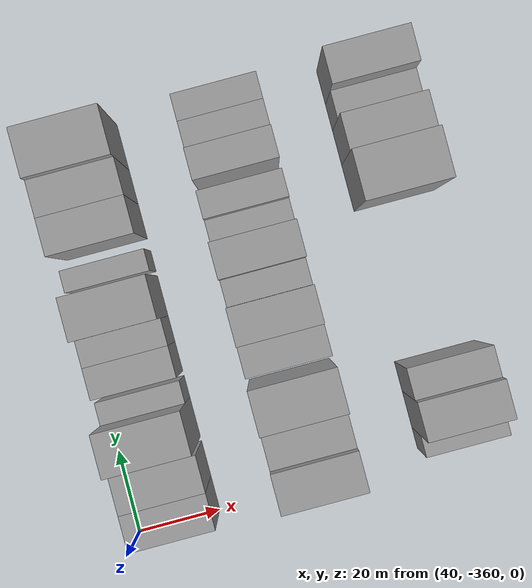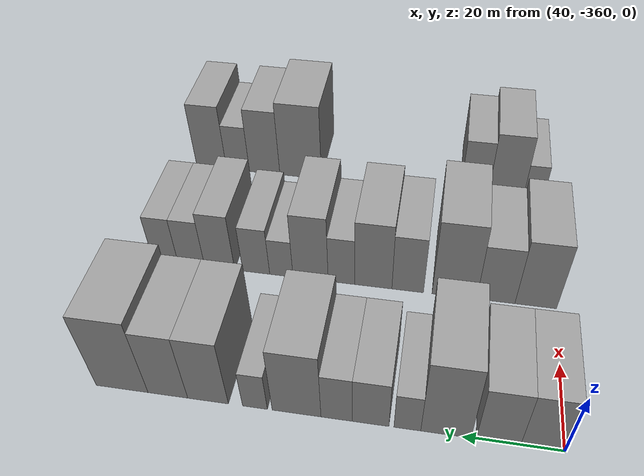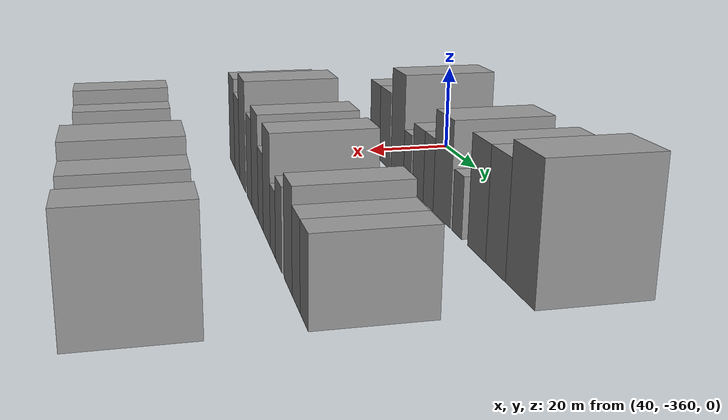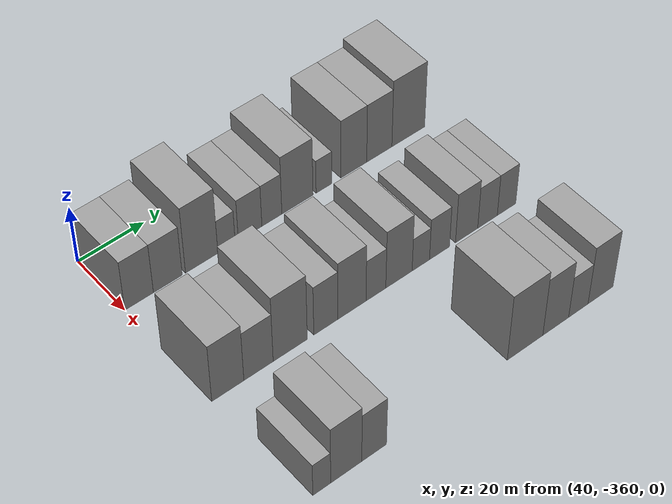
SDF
<sdf version="1.6">
 <world name="default">
  <model name="building_1">
   <static>1</static>
   <pose>50.0000 -355.7327 0 0.000000 0.000000 0.000000</pose>
   <link name="link">
    <pose>0 0 9.00 0 0 0</pose>
    <collision name="collision"><geometry><box><size>20.0000 8.5347 18.0000</size></box></geometry></collision>
    <visual name="visual">
     <cast_shadows>0</cast_shadows>
     <geometry><box><size>20.0000 8.5347 18.0000</size></box></geometry>
     <material>
      <script>
       <uri>model://grey_wall/materials/scripts</uri>
       <uri>model://grey_wall/materials/textures</uri>
       <name>vrc/grey_wall</name>
      </script>
     </material>
    </visual>
   </link>
  </model>
  <model name="building_2">
   <static>1</static>
   <pose>50.0000 -347.1133 0 0.000000 0.000000 0.000000</pose>
   <link name="link">
    <pose>0 0 9.00 0 0 0</pose>
    <collision name="collision"><geometry><box><size>20.0000 8.7041 18.0000</size></box></geometry></collision>
    <visual name="visual">
     <cast_shadows>0</cast_shadows>
     <geometry><box><size>20.0000 8.7041 18.0000</size></box></geometry>
     <material>
      <script>
       <uri>model://grey_wall/materials/scripts</uri>
       <uri>model://grey_wall/materials/textures</uri>
       <name>vrc/grey_wall</name>
      </script>
     </material>
    </visual>
   </link>
  </model>
  <model name="building_3">
   <static>1</static>
   <pose>50.0000 -336.7683 0 0.000000 0.000000 0.000000</pose>
   <link name="link">
    <pose>0 0 12.00 0 0 0</pose>
    <collision name="collision"><geometry><box><size>20.0000 9.9859 24.0000</size></box></geometry></collision>
    <visual name="visual">
     <cast_shadows>0</cast_shadows>
     <geometry><box><size>20.0000 9.9859 24.0000</size></box></geometry>
     <material>
      <script>
       <uri>model://grey_wall/materials/scripts</uri>
       <uri>model://grey_wall/materials/textures</uri>
       <name>vrc/grey_wall</name>
      </script>
     </material>
    </visual>
   </link>
  </model>
  <model name="building_4">
   <static>1</static>
   <pose>50.0000 -329.0870 0 0.000000 0.000000 0.000000</pose>
   <link name="link">
    <pose>0 0 6.00 0 0 0</pose>
    <collision name="collision"><geometry><box><size>20.0000 5.3767 12.0000</size></box></geometry></collision>
    <visual name="visual">
     <cast_shadows>0</cast_shadows>
     <geometry><box><size>20.0000 5.3767 12.0000</size></box></geometry>
     <material>
      <script>
       <uri>model://grey_wall/materials/scripts</uri>
       <uri>model://grey_wall/materials/textures</uri>
       <name>vrc/grey_wall</name>
      </script>
     </material>
    </visual>
   </link>
  </model>
  <model name="building_5">
   <static>1</static>
   <pose>50.0000 -321.6706 0 0.000000 0.000000 0.000000</pose>
   <link name="link">
    <pose>0 0 7.50 0 0 0</pose>
    <collision name="collision"><geometry><box><size>20.0000 7.4561 15.0000</size></box></geometry></collision>
    <visual name="visual">
     <cast_shadows>0</cast_shadows>
     <geometry><box><size>20.0000 7.4561 15.0000</size></box></geometry>
     <material>
      <script>
       <uri>model://grey_wall/materials/scripts</uri>
       <uri>model://grey_wall/materials/textures</uri>
       <name>vrc/grey_wall</name>
      </script>
     </material>
    </visual>
   </link>
  </model>
  <model name="building_6">
   <static>1</static>
   <pose>50.0000 -314.7482 0 0.000000 0.000000 0.000000</pose>
   <link name="link">
    <pose>0 0 7.50 0 0 0</pose>
    <collision name="collision"><geometry><box><size>20.0000 6.3887 15.0000</size></box></geometry></collision>
    <visual name="visual">
     <cast_shadows>0</cast_shadows>
     <geometry><box><size>20.0000 6.3887 15.0000</size></box></geometry>
     <material>
      <script>
       <uri>model://grey_wall/materials/scripts</uri>
       <uri>model://grey_wall/materials/textures</uri>
       <name>vrc/grey_wall</name>
      </script>
     </material>
    </visual>
   </link>
  </model>
  <model name="building_7">
   <static>1</static>
   <pose>50.0000 -306.4963 0 0.000000 0.000000 0.000000</pose>
   <link name="link">
    <pose>0 0 10.50 0 0 0</pose>
    <collision name="collision"><geometry><box><size>20.0000 10.1150 21.0000</size></box></geometry></collision>
    <visual name="visual">
     <cast_shadows>0</cast_shadows>
     <geometry><box><size>20.0000 10.1150 21.0000</size></box></geometry>
     <material>
      <script>
       <uri>model://grey_wall/materials/scripts</uri>
       <uri>model://grey_wall/materials/textures</uri>
       <name>vrc/grey_wall</name>
      </script>
     </material>
    </visual>
   </link>
  </model>
  <model name="building_8">
   <static>1</static>
   <pose>50.0000 -297.8354 0 0.000000 0.000000 0.000000</pose>
   <link name="link">
    <pose>0 0 6.00 0 0 0</pose>
    <collision name="collision"><geometry><box><size>20.0000 5.2068 12.0000</size></box></geometry></collision>
    <visual name="visual">
     <cast_shadows>0</cast_shadows>
     <geometry><box><size>20.0000 5.2068 12.0000</size></box></geometry>
     <material>
      <script>
       <uri>model://grey_wall/materials/scripts</uri>
       <uri>model://grey_wall/materials/textures</uri>
       <name>vrc/grey_wall</name>
      </script>
     </material>
    </visual>
   </link>
  </model>
  <model name="building_9">
   <static>1</static>
   <pose>50.0000 -287.9012 0 0.000000 0.000000 0.000000</pose>
   <link name="link">
    <pose>0 0 10.50 0 0 0</pose>
    <collision name="collision"><geometry><box><size>20.0000 8.6617 21.0000</size></box></geometry></collision>
    <visual name="visual">
     <cast_shadows>0</cast_shadows>
     <geometry><box><size>20.0000 8.6617 21.0000</size></box></geometry>
     <material>
      <script>
       <uri>model://grey_wall/materials/scripts</uri>
       <uri>model://grey_wall/materials/textures</uri>
       <name>vrc/grey_wall</name>
      </script>
     </material>
    </visual>
   </link>
  </model>
  <model name="building_10">
   <static>1</static>
   <pose>50.0000 -279.2929 0 0.000000 0.000000 0.000000</pose>
   <link name="link">
    <pose>0 0 10.50 0 0 0</pose>
    <collision name="collision"><geometry><box><size>20.0000 8.5549 21.0000</size></box></geometry></collision>
    <visual name="visual">
     <cast_shadows>0</cast_shadows>
     <geometry><box><size>20.0000 8.5549 21.0000</size></box></geometry>
     <material>
      <script>
       <uri>model://grey_wall/materials/scripts</uri>
       <uri>model://grey_wall/materials/textures</uri>
       <name>vrc/grey_wall</name>
      </script>
     </material>
    </visual>
   </link>
  </model>
  <model name="building_11">
   <static>1</static>
   <pose>50.0000 -269.3583 0 0.000000 0.000000 0.000000</pose>
   <link name="link">
    <pose>0 0 12.00 0 0 0</pose>
    <collision name="collision"><geometry><box><size>20.0000 11.3145 24.0000</size></box></geometry></collision>
    <visual name="visual">
     <cast_shadows>0</cast_shadows>
     <geometry><box><size>20.0000 11.3145 24.0000</size></box></geometry>
     <material>
      <script>
       <uri>model://grey_wall/materials/scripts</uri>
       <uri>model://grey_wall/materials/textures</uri>
       <name>vrc/grey_wall</name>
      </script>
     </material>
    </visual>
   </link>
  </model>
  <model name="building_78">
   <static>1</static>
   <pose>85.0000 -355.2807 0 0.000000 0.000000 0.000000</pose>
   <link name="link">
    <pose>0 0 10.50 0 0 0</pose>
    <collision name="collision"><geometry><box><size>20.0000 9.4386 21.0000</size></box></geometry></collision>
    <visual name="visual">
     <cast_shadows>0</cast_shadows>
     <geometry><box><size>20.0000 9.4386 21.0000</size></box></geometry>
     <material>
      <script>
       <uri>model://grey_wall/materials/scripts</uri>
       <uri>model://grey_wall/materials/textures</uri>
       <name>vrc/grey_wall</name>
      </script>
     </material>
    </visual>
   </link>
  </model>
  <model name="building_79">
   <static>1</static>
   <pose>85.0000 -346.1865 0 0.000000 0.000000 0.000000</pose>
   <link name="link">
    <pose>0 0 9.00 0 0 0</pose>
    <collision name="collision"><geometry><box><size>20.0000 8.7498 18.0000</size></box></geometry></collision>
    <visual name="visual">
     <cast_shadows>0</cast_shadows>
     <geometry><box><size>20.0000 8.7498 18.0000</size></box></geometry>
     <material>
      <script>
       <uri>model://grey_wall/materials/scripts</uri>
       <uri>model://grey_wall/materials/textures</uri>
       <name>vrc/grey_wall</name>
      </script>
     </material>
    </visual>
   </link>
  </model>
  <model name="building_80">
   <static>1</static>
   <pose>85.0000 -336.6284 0 0.000000 0.000000 0.000000</pose>
   <link name="link">
    <pose>0 0 12.00 0 0 0</pose>
    <collision name="collision"><geometry><box><size>20.0000 10.3663 24.0000</size></box></geometry></collision>
    <visual name="visual">
     <cast_shadows>0</cast_shadows>
     <geometry><box><size>20.0000 10.3663 24.0000</size></box></geometry>
     <material>
      <script>
       <uri>model://grey_wall/materials/scripts</uri>
       <uri>model://grey_wall/materials/textures</uri>
       <name>vrc/grey_wall</name>
      </script>
     </material>
    </visual>
   </link>
  </model>
  <model name="building_81">
   <static>1</static>
   <pose>85.0000 -325.7325 0 0.000000 0.000000 0.000000</pose>
   <link name="link">
    <pose>0 0 9.00 0 0 0</pose>
    <collision name="collision"><geometry><box><size>20.0000 7.4255 18.0000</size></box></geometry></collision>
    <visual name="visual">
     <cast_shadows>0</cast_shadows>
     <geometry><box><size>20.0000 7.4255 18.0000</size></box></geometry>
     <material>
      <script>
       <uri>model://grey_wall/materials/scripts</uri>
       <uri>model://grey_wall/materials/textures</uri>
       <name>vrc/grey_wall</name>
      </script>
     </material>
    </visual>
   </link>
  </model>
  <model name="building_82">
   <static>1</static>
   <pose>85.0000 -317.5813 0 0.000000 0.000000 0.000000</pose>
   <link name="link">
    <pose>0 0 10.50 0 0 0</pose>
    <collision name="collision"><geometry><box><size>20.0000 8.8770 21.0000</size></box></geometry></collision>
    <visual name="visual">
     <cast_shadows>0</cast_shadows>
     <geometry><box><size>20.0000 8.8770 21.0000</size></box></geometry>
     <material>
      <script>
       <uri>model://grey_wall/materials/scripts</uri>
       <uri>model://grey_wall/materials/textures</uri>
       <name>vrc/grey_wall</name>
      </script>
     </material>
    </visual>
   </link>
  </model>
  <model name="building_83">
   <static>1</static>
   <pose>85.0000 -309.9876 0 0.000000 0.000000 0.000000</pose>
   <link name="link">
    <pose>0 0 7.50 0 0 0</pose>
    <collision name="collision"><geometry><box><size>20.0000 6.3103 15.0000</size></box></geometry></collision>
    <visual name="visual">
     <cast_shadows>0</cast_shadows>
     <geometry><box><size>20.0000 6.3103 15.0000</size></box></geometry>
     <material>
      <script>
       <uri>model://grey_wall/materials/scripts</uri>
       <uri>model://grey_wall/materials/textures</uri>
       <name>vrc/grey_wall</name>
      </script>
     </material>
    </visual>
   </link>
  </model>
  <model name="building_84">
   <static>1</static>
   <pose>85.0000 -302.5805 0 0.000000 0.000000 0.000000</pose>
   <link name="link">
    <pose>0 0 10.50 0 0 0</pose>
    <collision name="collision"><geometry><box><size>20.0000 8.5039 21.0000</size></box></geometry></collision>
    <visual name="visual">
     <cast_shadows>0</cast_shadows>
     <geometry><box><size>20.0000 8.5039 21.0000</size></box></geometry>
     <material>
      <script>
       <uri>model://grey_wall/materials/scripts</uri>
       <uri>model://grey_wall/materials/textures</uri>
       <name>vrc/grey_wall</name>
      </script>
     </material>
    </visual>
   </link>
  </model>
  <model name="building_85">
   <static>1</static>
   <pose>85.0000 -295.4867 0 0.000000 0.000000 0.000000</pose>
   <link name="link">
    <pose>0 0 6.00 0 0 0</pose>
    <collision name="collision"><geometry><box><size>20.0000 5.6836 12.0000</size></box></geometry></collision>
    <visual name="visual">
     <cast_shadows>0</cast_shadows>
     <geometry><box><size>20.0000 5.6836 12.0000</size></box></geometry>
     <material>
      <script>
       <uri>model://grey_wall/materials/scripts</uri>
       <uri>model://grey_wall/materials/textures</uri>
       <name>vrc/grey_wall</name>
      </script>
     </material>
    </visual>
   </link>
  </model>
  <model name="building_86">
   <static>1</static>
   <pose>85.0000 -289.3375 0 0.000000 0.000000 0.000000</pose>
   <link name="link">
    <pose>0 0 7.50 0 0 0</pose>
    <collision name="collision"><geometry><box><size>20.0000 6.6150 15.0000</size></box></geometry></collision>
    <visual name="visual">
     <cast_shadows>0</cast_shadows>
     <geometry><box><size>20.0000 6.6150 15.0000</size></box></geometry>
     <material>
      <script>
       <uri>model://grey_wall/materials/scripts</uri>
       <uri>model://grey_wall/materials/textures</uri>
       <name>vrc/grey_wall</name>
      </script>
     </material>
    </visual>
   </link>
  </model>
  <model name="building_87">
   <static>1</static>
   <pose>85.0000 -280.2895 0 0.000000 0.000000 0.000000</pose>
   <link name="link">
    <pose>0 0 9.00 0 0 0</pose>
    <collision name="collision"><geometry><box><size>20.0000 7.4811 18.0000</size></box></geometry></collision>
    <visual name="visual">
     <cast_shadows>0</cast_shadows>
     <geometry><box><size>20.0000 7.4811 18.0000</size></box></geometry>
     <material>
      <script>
       <uri>model://grey_wall/materials/scripts</uri>
       <uri>model://grey_wall/materials/textures</uri>
       <name>vrc/grey_wall</name>
      </script>
     </material>
    </visual>
   </link>
  </model>
  <model name="building_88">
   <static>1</static>
   <pose>85.0000 -273.2208 0 0.000000 0.000000 0.000000</pose>
   <link name="link">
    <pose>0 0 7.50 0 0 0</pose>
    <collision name="collision"><geometry><box><size>20.0000 6.6563 15.0000</size></box></geometry></collision>
    <visual name="visual">
     <cast_shadows>0</cast_shadows>
     <geometry><box><size>20.0000 6.6563 15.0000</size></box></geometry>
     <material>
      <script>
       <uri>model://grey_wall/materials/scripts</uri>
       <uri>model://grey_wall/materials/textures</uri>
       <name>vrc/grey_wall</name>
      </script>
     </material>
    </visual>
   </link>
  </model>
  <model name="building_89">
   <static>1</static>
   <pose>85.0000 -266.7228 0 0.000000 0.000000 0.000000</pose>
   <link name="link">
    <pose>0 0 7.50 0 0 0</pose>
    <collision name="collision"><geometry><box><size>20.0000 6.3396 15.0000</size></box></geometry></collision>
    <visual name="visual">
     <cast_shadows>0</cast_shadows>
     <geometry><box><size>20.0000 6.3396 15.0000</size></box></geometry>
     <material>
      <script>
       <uri>model://grey_wall/materials/scripts</uri>
       <uri>model://grey_wall/materials/textures</uri>
       <name>vrc/grey_wall</name>
      </script>
     </material>
    </visual>
   </link>
  </model>
  <model name="building_161">
   <static>1</static>
   <pose>120.0000 -355.4141 0 0.000000 0.000000 0.000000</pose>
   <link name="link">
    <pose>0 0 6.00 0 0 0</pose>
    <collision name="collision"><geometry><box><size>20.0000 5.1717 12.0000</size></box></geometry></collision>
    <visual name="visual">
     <cast_shadows>0</cast_shadows>
     <geometry><box><size>20.0000 5.1717 12.0000</size></box></geometry>
     <material>
      <script>
       <uri>model://grey_wall/materials/scripts</uri>
       <uri>model://grey_wall/materials/textures</uri>
       <name>vrc/grey_wall</name>
      </script>
     </material>
    </visual>
   </link>
  </model>
  <model name="building_162">
   <static>1</static>
   <pose>120.0000 -348.2744 0 0.000000 0.000000 0.000000</pose>
   <link name="link">
    <pose>0 0 10.50 0 0 0</pose>
    <collision name="collision"><geometry><box><size>20.0000 9.1077 21.0000</size></box></geometry></collision>
    <visual name="visual">
     <cast_shadows>0</cast_shadows>
     <geometry><box><size>20.0000 9.1077 21.0000</size></box></geometry>
     <material>
      <script>
       <uri>model://grey_wall/materials/scripts</uri>
       <uri>model://grey_wall/materials/textures</uri>
       <name>vrc/grey_wall</name>
      </script>
     </material>
    </visual>
   </link>
  </model>
  <model name="building_163">
   <static>1</static>
   <pose>120.0000 -340.0384 0 0.000000 0.000000 0.000000</pose>
   <link name="link">
    <pose>0 0 9.00 0 0 0</pose>
    <collision name="collision"><geometry><box><size>20.0000 7.3644 18.0000</size></box></geometry></collision>
    <visual name="visual">
     <cast_shadows>0</cast_shadows>
     <geometry><box><size>20.0000 7.3644 18.0000</size></box></geometry>
     <material>
      <script>
       <uri>model://grey_wall/materials/scripts</uri>
       <uri>model://grey_wall/materials/textures</uri>
       <name>vrc/grey_wall</name>
      </script>
     </material>
    </visual>
   </link>
  </model>
  <model name="building_164">
   <static>1</static>
   <pose>120.0000 -292.9990 0 0.000000 0.000000 0.000000</pose>
   <link name="link">
    <pose>0 0 12.00 0 0 0</pose>
    <collision name="collision"><geometry><box><size>20.0000 11.5715 24.0000</size></box></geometry></collision>
    <visual name="visual">
     <cast_shadows>0</cast_shadows>
     <geometry><box><size>20.0000 11.5715 24.0000</size></box></geometry>
     <material>
      <script>
       <uri>model://grey_wall/materials/scripts</uri>
       <uri>model://grey_wall/materials/textures</uri>
       <name>vrc/grey_wall</name>
      </script>
     </material>
    </visual>
   </link>
  </model>
  <model name="building_165">
   <static>1</static>
   <pose>120.0000 -282.9363 0 0.000000 0.000000 0.000000</pose>
   <link name="link">
    <pose>0 0 10.50 0 0 0</pose>
    <collision name="collision"><geometry><box><size>20.0000 8.5540 21.0000</size></box></geometry></collision>
    <visual name="visual">
     <cast_shadows>0</cast_shadows>
     <geometry><box><size>20.0000 8.5540 21.0000</size></box></geometry>
     <material>
      <script>
       <uri>model://grey_wall/materials/scripts</uri>
       <uri>model://grey_wall/materials/textures</uri>
       <name>vrc/grey_wall</name>
      </script>
     </material>
    </visual>
   </link>
  </model>
  <model name="building_166">
   <static>1</static>
   <pose>120.0000 -275.4017 0 0.000000 0.000000 0.000000</pose>
   <link name="link">
    <pose>0 0 7.50 0 0 0</pose>
    <collision name="collision"><geometry><box><size>20.0000 6.5151 15.0000</size></box></geometry></collision>
    <visual name="visual">
     <cast_shadows>0</cast_shadows>
     <geometry><box><size>20.0000 6.5151 15.0000</size></box></geometry>
     <material>
      <script>
       <uri>model://grey_wall/materials/scripts</uri>
       <uri>model://grey_wall/materials/textures</uri>
       <name>vrc/grey_wall</name>
      </script>
     </material>
    </visual>
   </link>
  </model>
  <model name="building_167">
   <static>1</static>
   <pose>120.0000 -267.8918 0 0.000000 0.000000 0.000000</pose>
   <link name="link">
    <pose>0 0 10.50 0 0 0</pose>
    <collision name="collision"><geometry><box><size>20.0000 8.5046 21.0000</size></box></geometry></collision>
    <visual name="visual">
     <cast_shadows>0</cast_shadows>
     <geometry><box><size>20.0000 8.5046 21.0000</size></box></geometry>
     <material>
      <script>
       <uri>model://grey_wall/materials/scripts</uri>
       <uri>model://grey_wall/materials/textures</uri>
       <name>vrc/grey_wall</name>
      </script>
     </material>
    </visual>
   </link>
  </model>
 </world>
</sdf>
